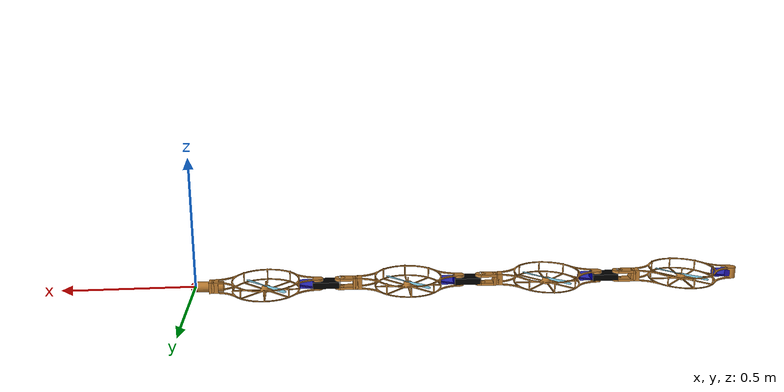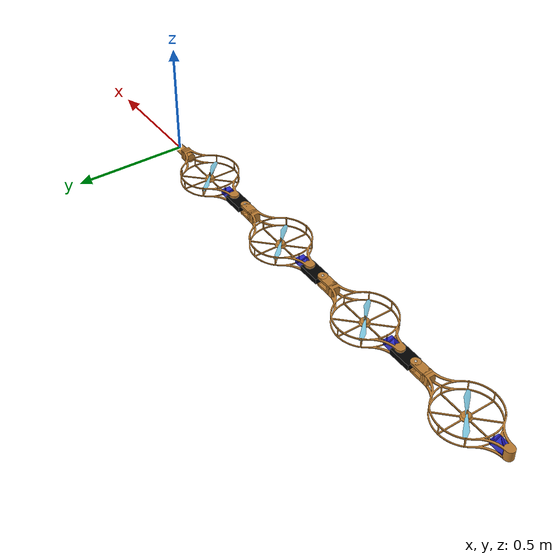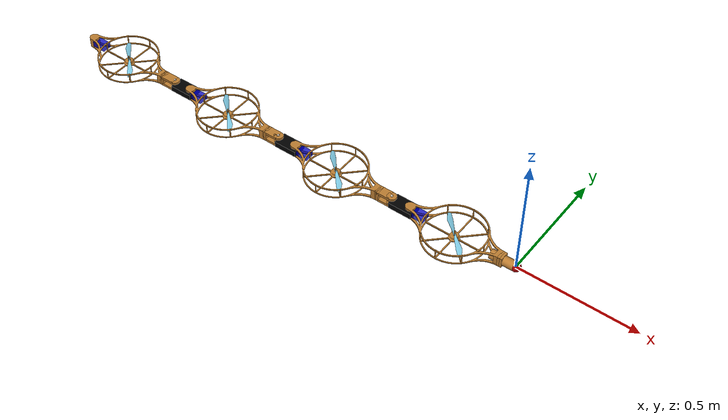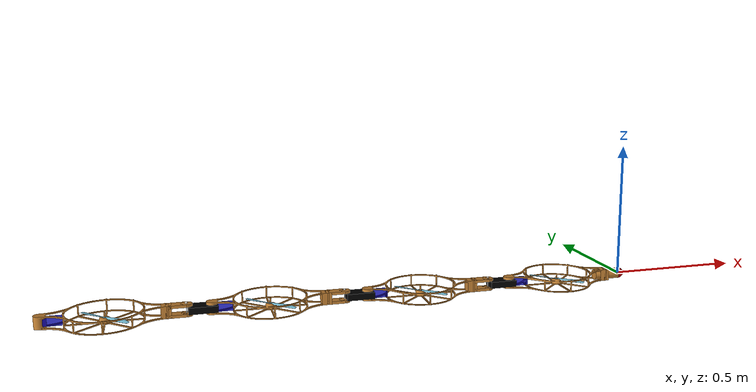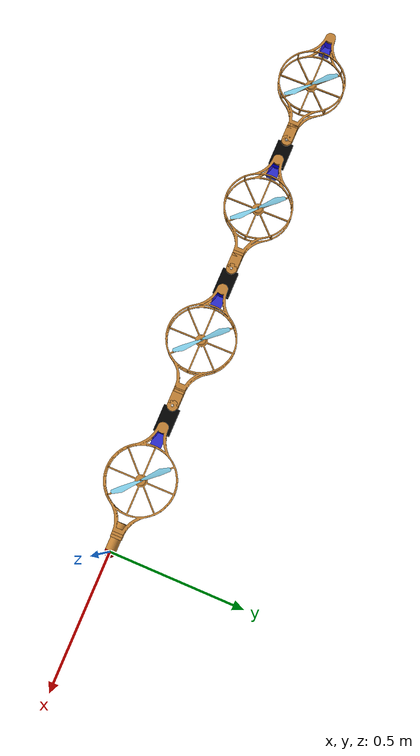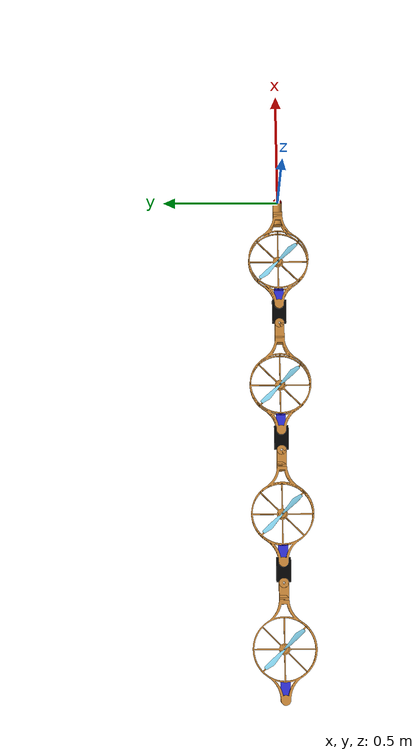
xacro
<?xml version="1.0"?>
<robot
    xmlns:xacro="http://www.ros.org/wiki/xacro" name="hydra" >

  <xacro:include filename="$(find aerial_robot_model)/urdf/hydra/hydra_common.xacro" />
  <xacro:include filename="$(find aerial_robot_model)/urdf/hydra/hydra_link.urdf.xacro" />
  <xacro:include filename="$(find aerial_robot_model)/urdf/hydra/hydra_head.urdf.xacro" />

  <xacro:hydra_head />
  <xacro:hydra_link parent="link0" self="link1"/>
  <xacro:hydra_link parent="link1" self="link2"/>
  <xacro:hydra_link parent="link2" self="link3"/>
  <xacro:hydra_end_link parent="link3" self="link4"/>

</robot>

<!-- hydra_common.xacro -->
<robot
    xmlns:xacro="http://www.ros.org/wiki/xacro" name="hydra_common" >

  <xacro:property name="abdomen_radius" value=".2" />
  <xacro:property name="abdomen_height" value=".044" />
  <xacro:property name="tail_len" value=".2" /> <!-- 0.1 is beautiful -->
  <xacro:property name="tail_width" value=".04" />
  <xacro:property name="tail_height" value=".01" />
  <xacro:property name="servo_rod_radius" value=".0025" />

  <xacro:macro name="link_color">
    <material name="gray">
      <color rgba="0.75 .5 .2 1"/>
    </material>
  </xacro:macro>

  <xacro:macro name="propeller_color">
    <material name="red">
      <color rgba="0.5 0.8 .9 1"/>
    </material>
  </xacro:macro>

</robot>

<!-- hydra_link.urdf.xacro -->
<robot
    xmlns:xacro="http://www.ros.org/wiki/xacro" name="hydra_link" >

  <xacro:macro name="hydra_link" params="parent self">

    <link name="${self}_front_junction">
      <visual>
        <geometry>
          <box size="0.01 ${tail_width} ${abdomen_height}"/>
        </geometry>
        <xacro:link_color />
      </visual>
    </link>

    <joint name="${self}_front_junction_${self}_abdomen_joint" type="fixed">
      <child link="${self}_abdomen"/>
      <parent link="${self}_front_junction"/>
      <origin rpy="0 0 0" xyz="${-abdomen_radius} 0 ${-abdomen_height*0.5}"/>
    </joint>

    <link name="${self}_battery">
      <visual>
        <geometry>
          <box size="${tail_len*.3} ${tail_len*.2} ${tail_len*.12}"/>
        </geometry>
        <material name="blue">
          <color rgba="0 0 .8 0.8"/>
        </material>
      </visual>
    </link>

    <joint name="${self}_baterry_${self}_abdomen_joint" type="fixed">
      <parent link="${self}_abdomen"/>
      <child link="${self}_battery"/>
      <origin xyz="${-abdomen_radius + tail_len*0.2} 0 ${abdomen_height * 0.5}"/>
    </joint>

    <link name="${self}_abdomen">
      <visual>
        <origin rpy="1.5708 0 0" xyz="0 0 0"/>
        <geometry>
          <mesh filename="package://aerial_robot_model/urdf/mesh_model/propeller_link.dae" scale=".001 .001 .001"/>
        </geometry>
        <xacro:link_color />
      </visual>
    </link>

    <link name="${self}_propeller">
      <visual>
        <origin rpy="0 0 0" xyz="0 0 0"/>
        <geometry>
          <mesh filename="package://aerial_robot_model/urdf/mesh_model/propellers.stl" scale=".001 .001 .001"/>
        </geometry>
        <xacro:propeller_color />
      </visual>
    </link>

    <joint name="${parent}_abdomen_${self}_propeller_joint" type="fixed">
      <parent link="${self}_abdomen"/>
      <child link="${self}_propeller"/>
      <origin rpy="0 0 0.76" xyz="0 0 0.018"/>
    </joint>

    <link name="${self}_servo">
      <visual>
        <geometry>
          <box size="${tail_len*.5} ${tail_len*.3} ${abdomen_height-tail_height*2}"/>
        </geometry>
        <material name="black">
          <color rgba="0 0 0 1"/>
        </material>
      </visual>
    </link>

    <joint name="${self}_servo_${self}_abdomen_joint" type="fixed">
      <parent link="${self}_front_junction"/>
      <child link="${self}_servo"/>
      <origin rpy="0 0 0"
              xyz="${-abdomen_radius * 2 - tail_len * 0.15} 0 0"/>
    </joint>

    <link name="${self}_servo_rod">
      <visual>
        <geometry>
          <cylinder length="${abdomen_height}" radius="${servo_rod_radius}"/>
        </geometry>
        <material name="white">
          <color rgba="1 1 1 0.8"/>
        </material>
      </visual>
    </link>

    <joint name="${self}_servo_rod_${self}_servo_joint" type="revolute">
      <limit effort="100.0" lower="-1.57" upper="1.57" velocity="0.5"/>
      <parent link="${self}_servo"/>
      <child link="${self}_servo_rod"/>
      <origin xyz="${-tail_len*.3+.005} 0 0"/>
      <axis xyz="0 0 1"/>
    </joint>

    <link name="${self}_servo_rod_top">
      <visual>
        <geometry>
          <sphere radius="${servo_rod_radius*2}"/>
        </geometry>
        <material name="white">
          <color rgba="1 1 1 0.8"/>
        </material>
      </visual>
    </link>

    <joint name="${self}_servo_rod_top_${self}_servo_rod_joint" type="fixed">
      <parent link="${self}_servo_rod"/>
      <child link="${self}_servo_rod_top"/>
      <origin rpy="0 0 0" xyz="0 0 ${abdomen_height*.5}"/>
    </joint>

    <link name="${self}_servo_rod_bottom">
      <visual>
        <geometry>
          <sphere radius="${servo_rod_radius*2}"/>
        </geometry>
        <material name="white">
          <color rgba="1 1 1 0.8"/>
        </material>
      </visual>
    </link>

    <joint name="${self}_servo_rod_${self}_bottom_servo_rod_joint" type="fixed">
      <parent link="${self}_servo_rod"/>
      <child link="${self}_servo_rod_bottom"/>
      <origin rpy="0 0 0" xyz="0 0 -${abdomen_height*.5}"/>
    </joint>

    <link name="${self}_top_hinge_end">
      <visual>
        <geometry>
          <cylinder length="${tail_height}" radius="${tail_width*.5}"/>
        </geometry>
        <xacro:link_color />
      </visual>
    </link>

    <joint name="${self}_top_hinge_end_${self}_servo_rod_joint" type="fixed">
      <parent link="${self}_servo_rod"/>
      <child link="${self}_top_hinge_end"/>
      <origin rpy="0 0 0" xyz="0 0 ${abdomen_height*.5-tail_height*.5}"/>
    </joint>

    <link name="${self}_bottom_hinge_end">
      <visual>
        <geometry>
          <cylinder length="${tail_height}" radius="${tail_width*.5}"/>
        </geometry>
        <xacro:link_color />
      </visual>
    </link>

    <joint name="${self}_bottom_hinge_end_${self}_servo_rod_joint" type="fixed">
      <parent link="${self}_servo_rod"/>
      <child link="${self}_bottom_hinge_end"/>
      <origin rpy="0 0 0" xyz="0 0 ${-abdomen_height*.5+tail_height*.5}"/>
    </joint>

    <link name="${self}_top_hinge">
      <visual>
        <geometry>
          <box size="${tail_len*.3} ${tail_width} ${tail_height}"/>
        </geometry>
        <xacro:link_color />
      </visual>
    </link>

    <joint name="${self}_top_hinge_${self}_top_hinge_end_joint" type="fixed">
      <parent link="${self}_top_hinge_end"/>
      <child link="${self}_top_hinge"/>
      <origin rpy="0 0 0" xyz="${-tail_len*.15} 0 0"/>
    </joint>

    <link name="${self}_bottom_hinge">
      <visual>
        <geometry>
          <box size="${tail_len*.3} ${tail_width} ${tail_height}"/>
        </geometry>
        <xacro:link_color />
      </visual>
    </link>

    <joint name="${self}_bottom_hinge_${self}_bottom_hinge_end_joint" type="fixed">
      <parent link="${self}_bottom_hinge_end"/>
      <child link="${self}_bottom_hinge"/>
      <origin rpy="0 0 0" xyz="${-tail_len*.15} 0 0"/>
    </joint>

    <link name="${self}_rear_junction">
      <visual>
        <geometry>
          <box size="0.01 ${tail_width } ${abdomen_height}"/>
        </geometry>
        <xacro:link_color />
      </visual>
    </link>

    <joint name="${self}_rear_junction_${self}_servo_rod_joint" type="fixed">
      <parent link="${self}_servo_rod"/>
      <child link="${self}_rear_junction"/>
      <origin rpy="0 0 0" xyz="${-tail_len*.3+.005} 0 0"/>
    </joint>

    <joint name="${parent}_${self}_joint" type="fixed">
      <parent link="${parent}_rear_junction"/>
      <child link="${self}_front_junction"/>
      <origin rpy="0 0 0" xyz="-0.01 0 0"/>
    </joint>

  </xacro:macro>

  <xacro:macro name="hydra_end_link" params="parent self">

    <link name="${self}_front_junction">
      <visual>
        <geometry>
          <box size="0.01 ${tail_width} ${abdomen_height}"/>
        </geometry>
        <xacro:link_color />
      </visual>
    </link>

    <joint name="${self}_front_junction_${self}_abdomen_joint" type="fixed">
      <child link="${self}_abdomen"/>
      <parent link="${self}_front_junction"/>
      <origin rpy="0 0 0" xyz="${-abdomen_radius} 0 ${-abdomen_height*0.5}"/>
    </joint>

    <link name="${self}_battery">
      <visual>
        <geometry>
          <box size="${tail_len*.3} ${tail_len*.2} ${tail_len*.12}"/>
        </geometry>
        <material name="blue">
          <color rgba="0 0 .8 0.8"/>
        </material>
      </visual>
    </link>

    <joint name="${self}_baterry_${self}_abdomen_joint" type="fixed">
      <parent link="${self}_abdomen"/>
      <child link="${self}_battery"/>
      <origin xyz="${-abdomen_radius  + tail_len*0.2} 0 ${abdomen_height * 0.5}"/>
    </joint>

    <link name="${self}_abdomen">
      <visual>
        <origin rpy="1.5708 0 0" xyz="0 0 0"/>
        <geometry>
          <mesh filename="package://aerial_robot_model/urdf/mesh_model/propeller_link.dae" scale=".001 .001 .001"/>
        </geometry>
        <xacro:link_color />
      </visual>
    </link>

    <link name="${self}_propeller">
      <visual>
        <origin rpy="0 0 0" xyz="0 0 0"/>
        <geometry>
          <mesh filename="package://aerial_robot_model/urdf/mesh_model/propellers.stl" scale=".001 .001 .001"/>
        </geometry>
        <xacro:propeller_color />
      </visual>
    </link>

    <joint name="${parent}_abdomen_${self}_propeller_joint" type="fixed">
      <parent link="${self}_abdomen"/>
      <child link="${self}_propeller"/>
      <origin rpy="0 0 0.76" xyz="0 0 0.018"/>
    </joint>

    <joint name="${parent}_${self}_joint" type="fixed">
      <parent link="${parent}_rear_junction"/>
      <child link="${self}_front_junction"/>
      <origin rpy="0 0 0" xyz="-0.01 0 0"/>
    </joint>

  </xacro:macro>

</robot>

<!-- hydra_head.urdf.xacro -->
<robot
    xmlns:xacro="http://www.ros.org/wiki/xacro" name="hydra_head" >

  <xacro:macro name="hydra_head">

    <link name="eye">
      <visual>
        <geometry>
          <sphere radius="0.01"/>
        </geometry>
        <material name="Red">
          <color rgba=".7 .0 .0 1"/>
        </material>
      </visual>
    </link>

    <joint name="eye_head_sphere_joint" type="fixed">
      <parent link="head_sphere"/>
      <child link="eye"/>
      <origin rpy="0 0 0" xyz="0 0 0"/>
    </joint>

    <link name="head_sphere">
      <visual>
        <geometry>
          <sphere radius="${tail_width*.5}"/>
        </geometry>
        <material name="Red">
          <color rgba=".7 .0 .0 1"/>
        </material>
      </visual>
    </link>

    <joint name="head_sphere_head_cylinder_joint" type="fixed">
      <parent link="head_cylinder"/>
      <child link="head_sphere"/>
      <origin rpy="0 0 0" xyz="0 0 0"/>
    </joint>

    <link name="head_cylinder">
      <visual>
        <geometry>
          <cylinder length="0.1" radius="${tail_width*.5}"/>
        </geometry>
        <origin rpy="0 1.57075 0 " xyz="-0.055 0 0"/>
        <xacro:link_color />
      </visual>
    </link>

    <link name="link0_rear_junction">
      <visual>
        <geometry>
          <box size="0.01 ${tail_width} ${abdomen_height}"/>
        </geometry>
        <xacro:link_color />
      </visual>
    </link>

    <joint name="link0_rear_junction_abdomen_joint" type="fixed">
      <parent link="head_cylinder"/>
      <child link="link0_rear_junction"/>
      <origin rpy="0 0 0" xyz="-0.055 0 0"/>
    </joint>

  </xacro:macro>

</robot>
